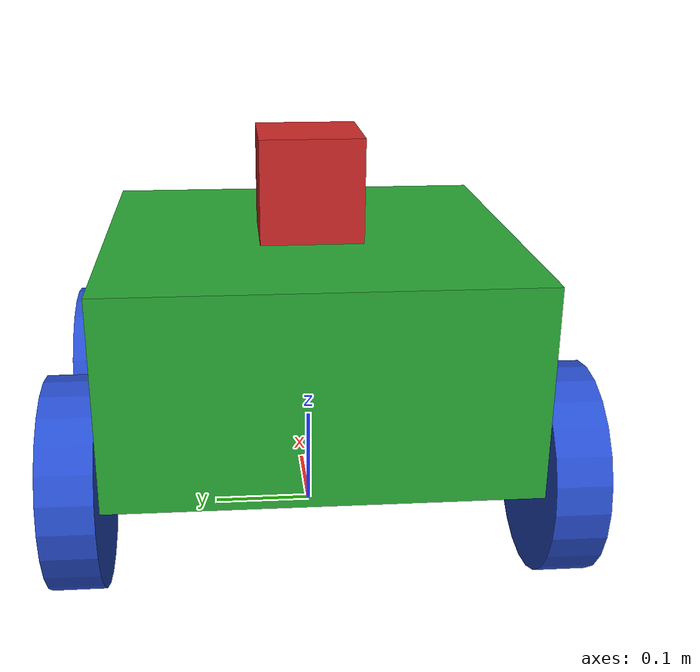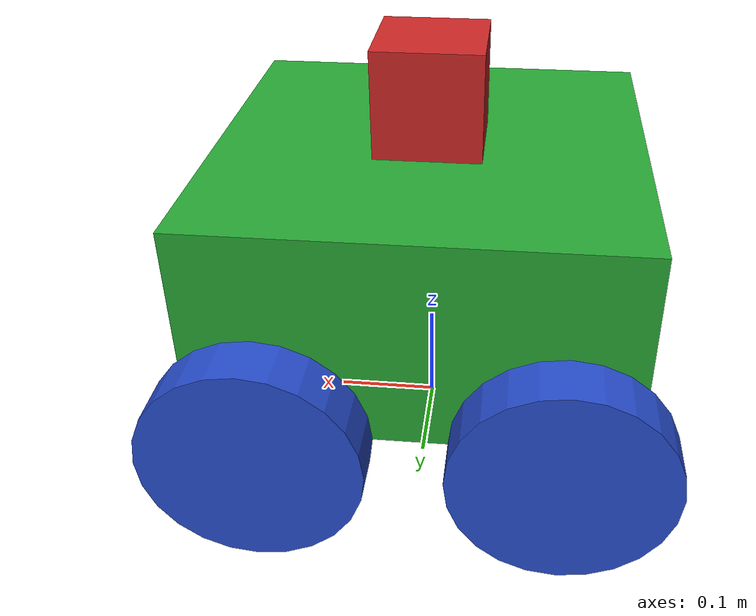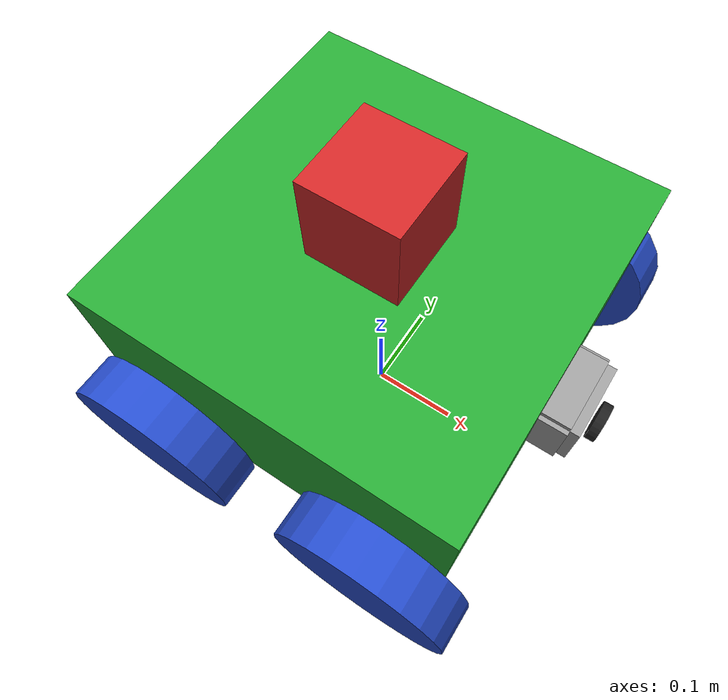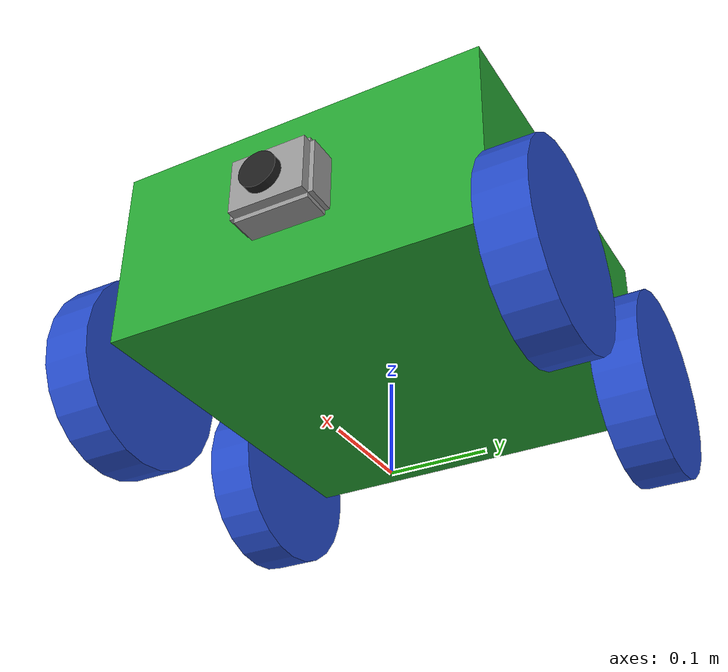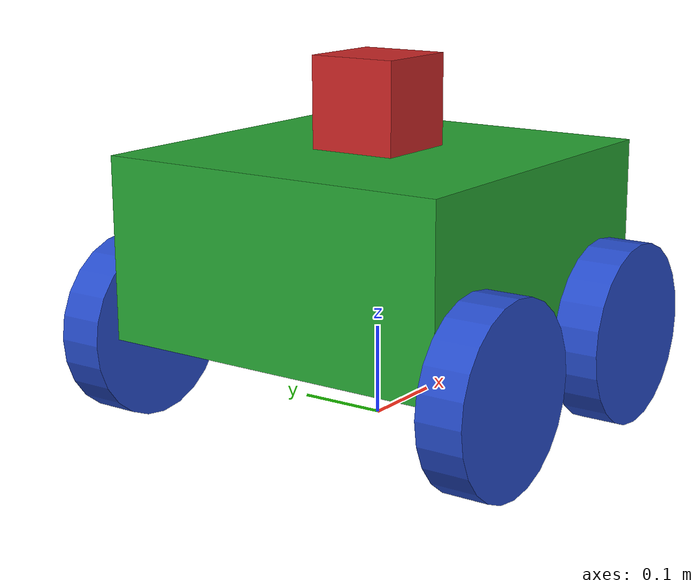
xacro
<?xml version="1.0"?>
<robot xmlns:xacro="http://www.ros.org/wiki/xacro" >

    <xacro:property name="base_length" value="0.4"/>
    <xacro:property name="base_width" value="0.4"/>
    <xacro:property name="base_height" value="0.2"/>
    <xacro:property name="base_mass" value="5"/>

    <xacro:property name="wheel_radius" value="${base_height/2}"/>
    <xacro:property name="wheel_length" value="0.05"/>
    <xacro:property name="wheel_mass" value="1"/>

    <xacro:property name="camera_length" value="0.01"/>
    <xacro:property name="camera_width" value="0.08"/>
    <xacro:property name="camera_height" value="0.06"/>
    <xacro:property name="camera_mass" value="0.04"/>

    <xacro:property name="camera_sphere_mass" value="0.04"/>
    <xacro:property name="camera_sphere_radius" value="${camera_height/2.0}"/>

    <xacro:macro name="cuboid_link" params="prefix m l b h x y z r p yaw " >
        <link name="${prefix}_link">
            <visual>
                <geometry>
                    <box size="${l} ${b} ${h}"/>
                </geometry>
                <origin xyz="${x} ${y} ${z}" rpy="${r} ${p} ${yaw}"/>
                <material name="green"/>
            </visual>
            <xacro:cuboid_collision lbh="${l} ${b} ${h}" o_xyz="${x} ${y} ${z}" o_rpy="${r} ${p} ${yaw}"/>
            <xacro:cuboid_inertia m="${m}" x="${x}" y="${y}" z="${z}" o_xyz="${x} ${y} ${z}" o_rpy="${r} ${p} ${yaw}"/>
        </link>
    </xacro:macro>

    <xacro:macro name="cube_link" params="prefix m l b h x y z r p yaw " >
        <link name="${prefix}_link">
            <visual>
                <geometry>
                    <box size="${l} ${b} ${h}"/>
                </geometry>
                <origin xyz="${x} ${y} ${z}" rpy="${r} ${p} ${yaw}"/>
                <material name="red"/>
            </visual>
            <xacro:cuboid_collision lbh="${l} ${b} ${h}" o_xyz="${x} ${y} ${z}" o_rpy="${r} ${p} ${yaw}"/>
            <xacro:cuboid_inertia m="${m}" x="${x}" y="${y}" z="${z}" o_xyz="${x} ${y} ${z}" o_rpy="${r} ${p} ${yaw}"/>
        </link>
    </xacro:macro>

    <xacro:macro name="small_cuboid_link" params="prefix m l b h x y z r p yaw " >
        <link name="${prefix}_link">
            <visual>
                <geometry>
                    <box size="${l} ${b} ${h}"/>
                </geometry>
                <origin xyz="${x} ${y} ${z}" rpy="${r} ${p} ${yaw}"/>
                <material name="grey"/>
            </visual>
            <xacro:cuboid_collision lbh="${l} ${b} ${h}" o_xyz="${x} ${y} ${z}" o_rpy="${r} ${p} ${yaw}"/>
            <xacro:cuboid_inertia m="${m}" x="${x}" y="${y}" z="${z}" o_xyz="${x} ${y} ${z}" o_rpy="${r} ${p} ${yaw}"/>
        </link>
    </xacro:macro>

    <xacro:macro name="wheel_link" params="prefix m r l x y z roll p yaw">
        <link name="${prefix}_wheel_link">
            <visual>
                <geometry>
                    <cylinder radius="${r}" length="${l}"/>
                </geometry>
                <origin xyz="${x} ${y} ${z}" rpy="${roll} ${p} ${yaw}"/>
                <material name="blue"/>
            </visual>
            <xacro:cylinder_inertia m="${m}" r="${r}" l="${l}" o_xyz="${x} ${y} ${z}" o_rpy="${roll} ${p} ${yaw}"/>
            <xacro:cylinder_collision r="${r}" l="${l}" o_xyz="${x} ${y} ${z}" o_rpy="${roll} ${p} ${yaw}"/>
        </link>
    </xacro:macro>

    <xacro:macro name="sphere_link" params="prefix m r x y z roll p yaw">
        <link name="${prefix}_sphere_link">
            <visual>
                <geometry>
                    <sphere radius="${r}"/>
                </geometry>
                <origin xyz="${x} ${y} ${z}" rpy="${roll} ${p} ${yaw}"/>
                <material name="yellow"/>
            </visual>
            <xacro:sphere_inertia m="${m}" r="${r}" o_xyz="${x} ${y} ${z}" o_rpy="${roll} ${p} ${yaw}"/>
            <xacro:sphere_collision r="${r}" o_xyz="${x} ${y} ${z}" o_rpy="${roll} ${p} ${yaw}"/>
        </link>
    </xacro:macro>

    <link name="odom"/>
    <joint name="odom_to_base_footprint" type="fixed">
        <parent link="odom"/>
        <child  link="base_footprint"/>
        <origin xyz="0 0 0" rpy="0 0 0"/>
    </joint>

    <link name="base_footprint"/>

    <xacro:cuboid_link prefix="base" m="${base_mass}" l="${base_length}" b="${base_width}" h="${base_height}" x="0" y="0" z="${base_height/2}" r="0" p="0" yaw="0"/>

    <xacro:wheel_link prefix="rear_right" m="${wheel_mass}" l="${wheel_length}" r="${wheel_radius}" x="0" y="0" z="0" roll="${pi/2}" p="0" yaw="0"/>

    <xacro:wheel_link prefix="rear_left" m="${wheel_mass}" l="${wheel_length}" r="${wheel_radius}" x="0" y="0" z="0" roll="${pi/2}" p="0" yaw="0"/>

    <xacro:wheel_link prefix="front_right" m="${wheel_mass}" l="${wheel_length}" r="${wheel_radius}" x="0" y="0" z="0" roll="${pi/2}" p="0" yaw="0"/>

    <xacro:wheel_link prefix="front_left" m="${wheel_mass}" l="${wheel_length}" r="${wheel_radius}" x="0" y="0" z="0" roll="${pi/2}" p="0" yaw="0"/>

    <xacro:small_cuboid_link prefix="camera" m="${camera_mass}" l="${camera_length}" b="${camera_width}" h="${camera_height}" x="0" y="0" z="0" r="0" p="0" yaw="0"/>

    <xacro:sphere_link prefix="camera" m="${camera_sphere_mass}"  r="${camera_sphere_radius}" x="0" y="0" z="0" roll="0" p="0" yaw="0"/>

    <link name="optical_camera_link">
        <visual>
            <geometry>
                <cylinder radius="0.02" length="0.01"/>
            </geometry>
            <origin xyz="0 0 -0.005" rpy="0 ${pi/2.0} 0"/>
            <material name="black"/>
        </visual>
        <xacro:cylinder_inertia m="0.02" r="0.03" l="0.01" o_xyz="0 0 -0.005" o_rpy="0 ${pi/2.0} 0"/>
        <xacro:cylinder_collision r="0.03" l="0.01" o_xyz="0 0 -0.005" o_rpy="0 ${pi/2.0} 0"/>
    </link>

    <joint name="base_footprint_base_joint" type="fixed">
        <parent link="base_footprint"/>
        <child link="base_link"/>
        <origin xyz="0 0 ${base_height/2}" rpy="0 0 0"/>
    </joint>

    <joint name="base_rear_right_wheel_joint" type="continuous">
        <parent link="base_link"/>
        <child link="rear_right_wheel_link"/>
        <axis xyz="0 1 0"/>
        <origin xyz="${-base_length/3} ${-((base_width/2)+(wheel_length/2))} 0" rpy="0 0 0"/>
        <limit effort="100" velocity="10"/>
        <dynamics damping="1.0" friction="1.0"/>
    </joint>

    <joint name="base_rear_left_wheel_joint" type="continuous">
        <parent link="base_link"/>
        <child link="rear_left_wheel_link"/>
        <axis xyz="0 1 0"/>
        <origin xyz="${-base_length/3} ${((base_width/2)+(wheel_length/2))} 0" rpy="0 0 0"/>
        <limit effort="100" velocity="10"/>
        <dynamics damping="1.0" friction="1.0"/>
    </joint>

    <joint name="base_front_right_wheel_joint" type="continuous">
        <parent link="base_link"/>
        <child link="front_right_wheel_link"/>
        <axis xyz="0 1 0"/>
        <origin xyz="${base_length/3} ${-((base_width/2)+(wheel_length/2))} 0" rpy="0 0 0"/>
        <limit effort="100" velocity="10"/>
        <dynamics damping="1.0" friction="1.0"/>
    </joint>

    <joint name="base_front_left_wheel_joint" type="continuous">
        <parent link="base_link"/>
        <child link="front_left_wheel_link"/>
        <axis xyz="0 1 0"/>
        <origin xyz="${base_length/3} ${((base_width/2)+(wheel_length/2))} 0" rpy="0 0 0"/>
        <limit effort="100" velocity="10"/>
        <dynamics damping="1.0" friction="1.0"/>
    </joint>

    <joint name="base_camera_sphere_joint" type="revolute">
        <parent link="base_link"/>
        <child link="camera_sphere_link"/>
        <origin xyz="${base_length/2} 0 ${base_height/2}" rpy="0 0 0"/>
        <axis xyz="0 1 0"/>
        <limit lower="${-pi/2.0}" upper="${pi/2.0}" effort="100" velocity="100"/>
        <dynamics friction="0.3" damping="0.1"/>
    </joint>

    <joint name="sphere_camera_link" type="fixed">
        <parent link="camera_sphere_link"/>
        <child link="camera_link"/>
        <origin xyz="${camera_sphere_radius+(camera_length/2.0)} 0 0" rpy="0 0 0"/>
    </joint>

    <joint name="camera_optical_camera_link" type="fixed">
        <parent link="camera_link"/>
        <child link="optical_camera_link"/>
        <origin xyz="${camera_length*1.5} 0 0" rpy="0 0 0"/>
    </joint>

    <xacro:cube_link prefix="scan" m="1.2" l="0.1" b="0.1" h="0.1" x="0" y="0" z="0.05" r="0" p="0" yaw="0"/>

    <joint  name="scan_joint" type="fixed">
        <origin xyz="0.0 0 0.2" rpy="0 0 0"/>
        <child link="scan_link"/>
        <parent link="base_link"/>
    </joint>

    <link name="imu_link"/>
    <joint name="imu_joint" type="fixed">
        <origin xyz="0 0 0" rpy="0 0 0" />
        <parent link="base_link"/>
        <child link="imu_link" />
    </joint>

    <xacro:small_cuboid_link prefix="c_up" m="0.02" l="0.03" b="0.08" h="0.01" x="0.015" y="0" z="0" r="0" p="0" yaw="0"/>

    <xacro:small_cuboid_link prefix="c_down" m="0.02" l="0.03" b="0.08" h="0.01" x="0.015" y="0" z="0" r="0" p="0" yaw="0"/>

    <xacro:small_cuboid_link prefix="c_right" m="0.02" l="0.03" b="0.01" h="0.06" x="0.015" y="0" z="0" r="0" p="0" yaw="0"/>

    <xacro:small_cuboid_link prefix="c_left" m="0.02" l="0.03" b="0.01" h="0.06" x="0.015" y="0" z="0" r="0" p="0" yaw="0"/>

    <joint name="base_c_up_joint" type="fixed">
        <parent link="base_link"/>
        <child link="c_up_link"/>
        <origin xyz="${base_length/2.0} 0 0.13" rpy="0 0 0"/>
    </joint>

    <joint name="base_c_down_joint" type="fixed">
        <parent link="base_link"/>
        <child link="c_down_link"/>
        <origin xyz="${base_length/2.0} 0 0.07" rpy="0 0 0"/>
    </joint>

    <joint name="base_c_right_joint" type="fixed">
        <parent link="base_link"/>
        <child link="c_right_link"/>
        <origin xyz="${base_length/2.0} -0.04 0.1" rpy="0 0 0"/>
    </joint>

    <joint name="base_c_left_joint" type="fixed">
        <parent link="base_link"/>
        <child link="c_left_link"/>
        <origin xyz="${base_length/2.0} 0.04 0.1" rpy="0 0 0"/>
    </joint>
</robot>
